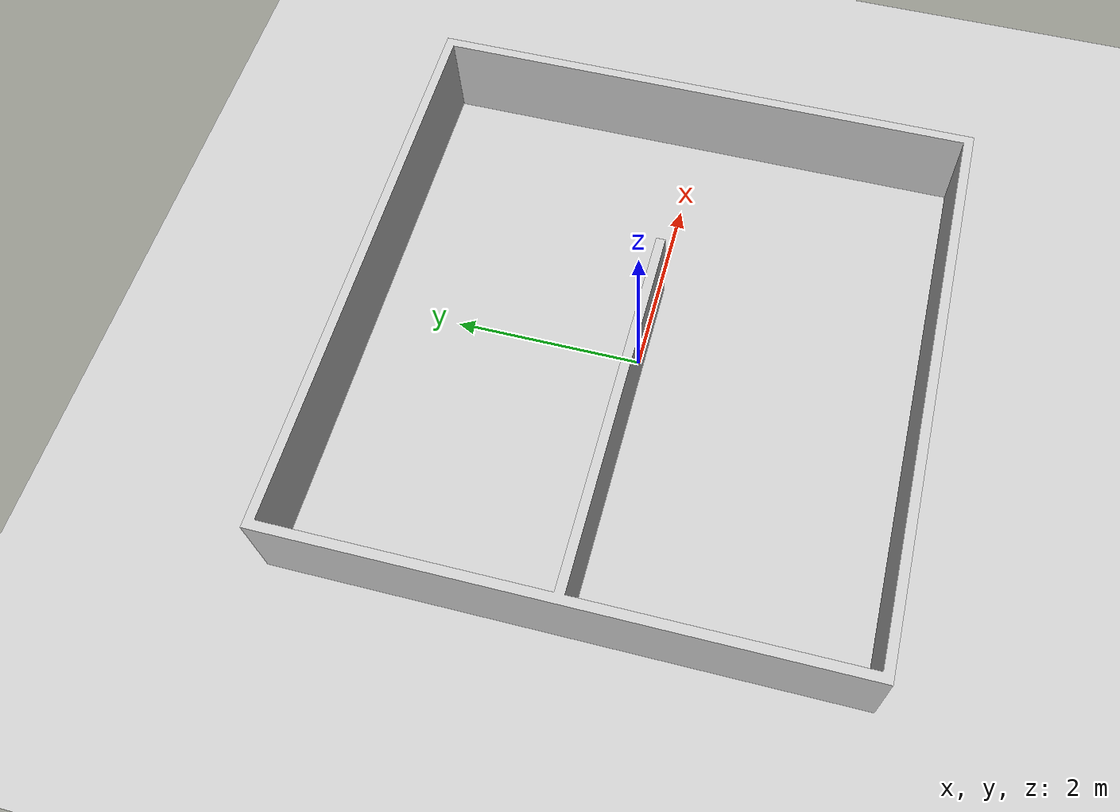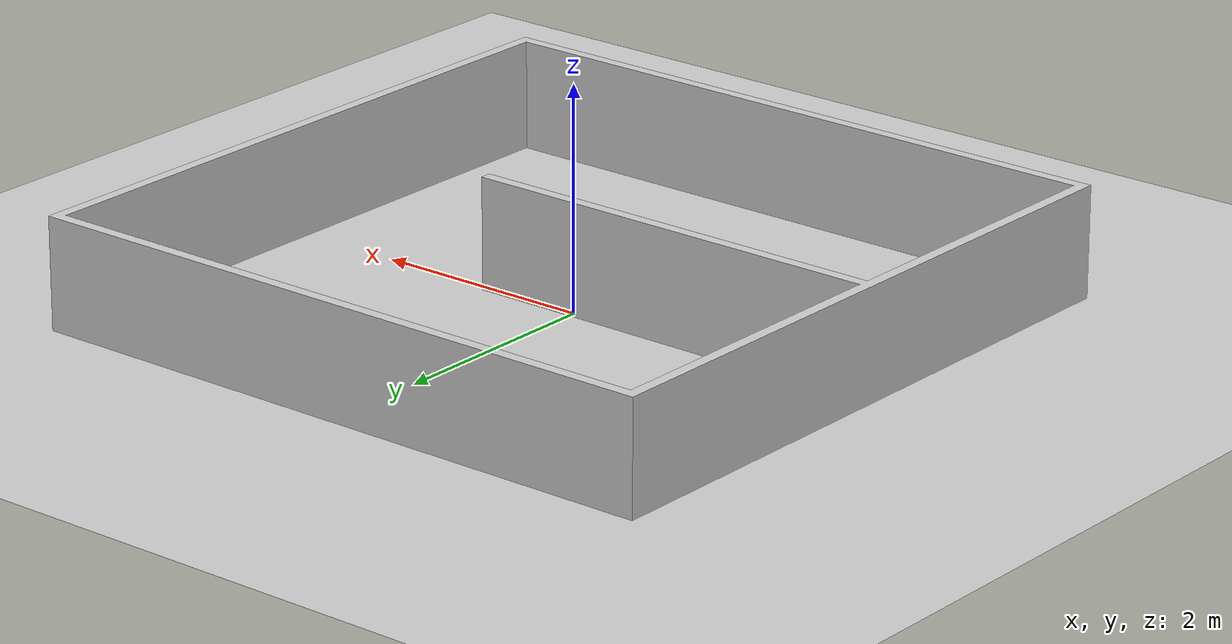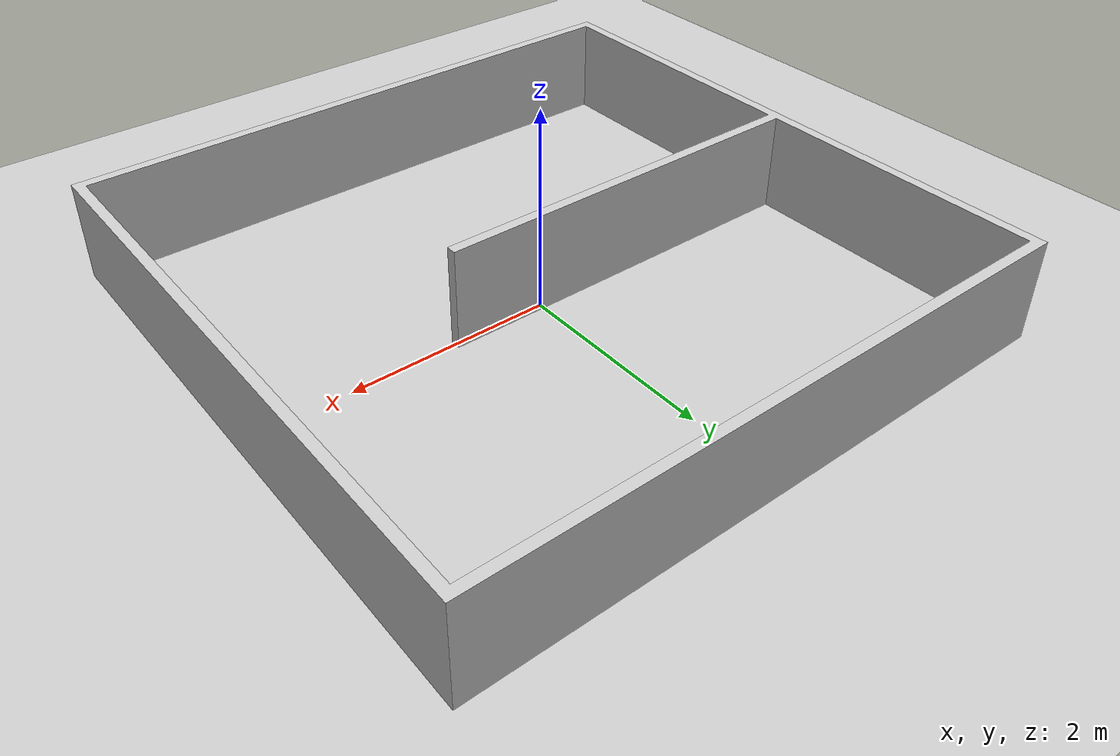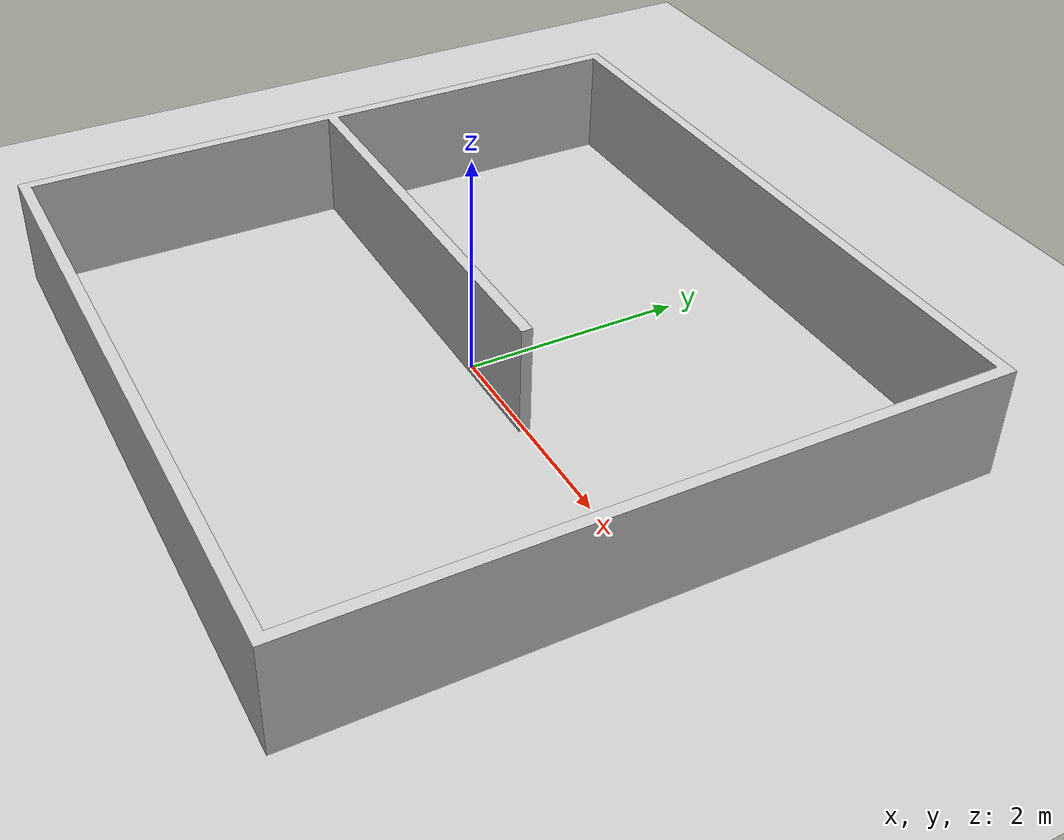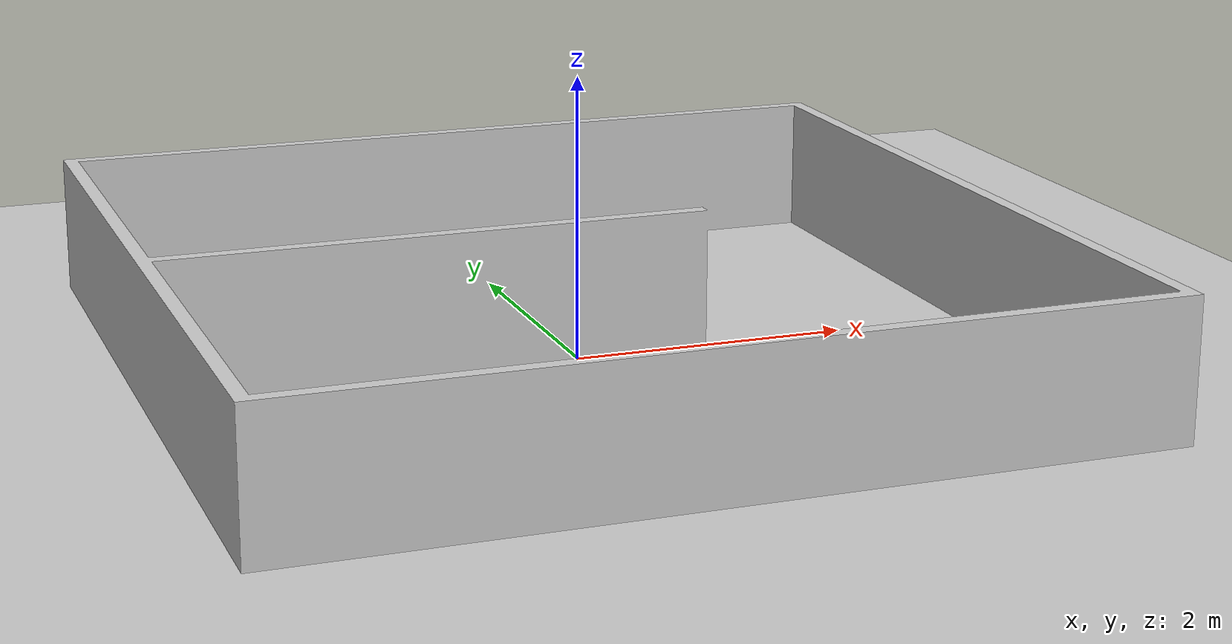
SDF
<sdf version="1.5">
    <world name="default">
        <!-- A global light source -->
        <include>
            <uri>model://sun</uri>
        </include>

        <!-- A ground plane -->
        <include>
            <uri>model://ground_plane</uri>
        </include>

        <physics type="ode">
          <real_time_update_rate>1000.0</real_time_update_rate>
          <max_step_size>0.001</max_step_size>
          <real_time_factor>1</real_time_factor>
          <ode>
            <solver>
            <type>quick</type>
            <iters>150</iters>
            <precon_iters>0</precon_iters>
            <sor>1.400000</sor>
            <use_dynamic_moi_rescaling>1</use_dynamic_moi_rescaling>
            </solver>
            <constraints>
            <cfm>0.00001</cfm>
            <erp>0.2</erp>
            <contact_max_correcting_vel>2000.000000</contact_max_correcting_vel>
            <contact_surface_layer>0.01000</contact_surface_layer>
            </constraints>
          </ode>
        </physics>

        <!-- Sample object -->
        <include>
            <uri>model://simple_corridor</uri>
            <pose>0 0 0 0 0 0</pose>
            <static>1</static>
        </include>
        <scene>
            <ambient>0.4 0.4 0.4 1</ambient>
            <background>0.7 0.7 0.7 1</background>
            <shadows>false</shadows>
        </scene>
        <gui fullscreen='0'>
          <camera name='user_camera'>
            <pose>-1.47082 0 11.4747 0 1.4418 0</pose>
            <view_controller>orbit</view_controller>
            <projection_type>perspective</projection_type>
          </camera>
        </gui>
    </world>
</sdf>

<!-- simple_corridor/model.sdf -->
<sdf version="1.5">
  <model name="simple_corridor/">
    <static>true</static>
    <pose>0 0 0 0 0 0</pose>
    <link name="walls">
      <collision name="collision">
        <geometry>
          <mesh>
            <uri>model://simple_corridor/meshes/simple_corridor.dae</uri>
          </mesh>
        </geometry>
      </collision>
      <visual name="visual">
        <geometry>
          <mesh>
            <uri>model://simple_corridor/meshes/simple_corridor.dae</uri>
          </mesh>
        </geometry>
        <cast_shadows>false</cast_shadows>
      </visual>
    </link>
  </model>
</sdf>
